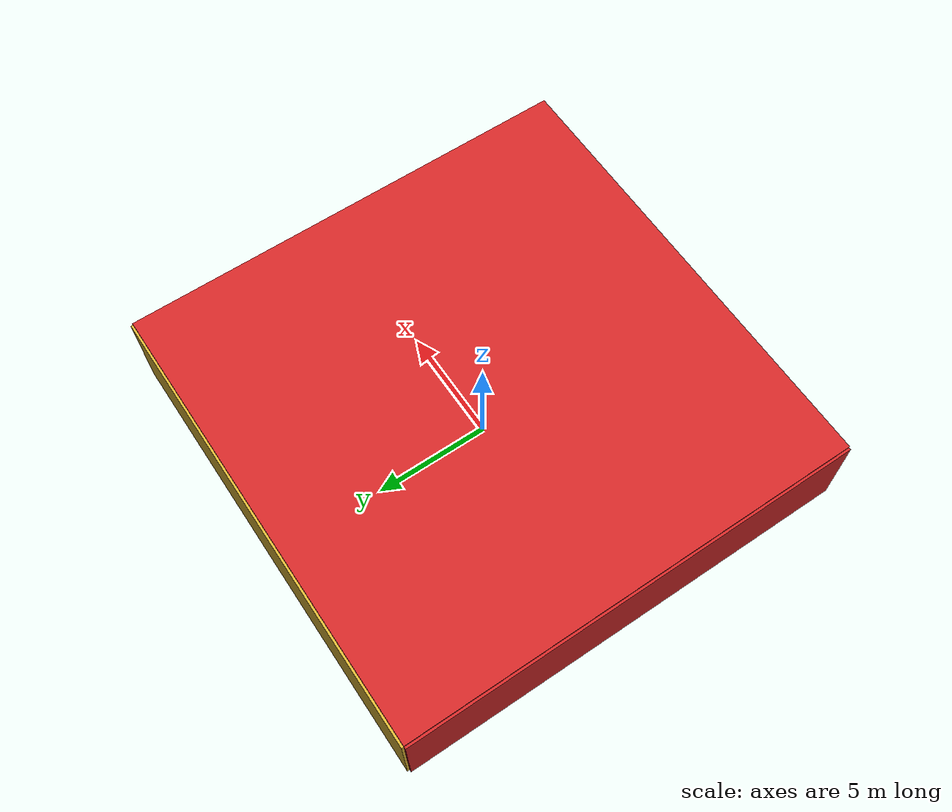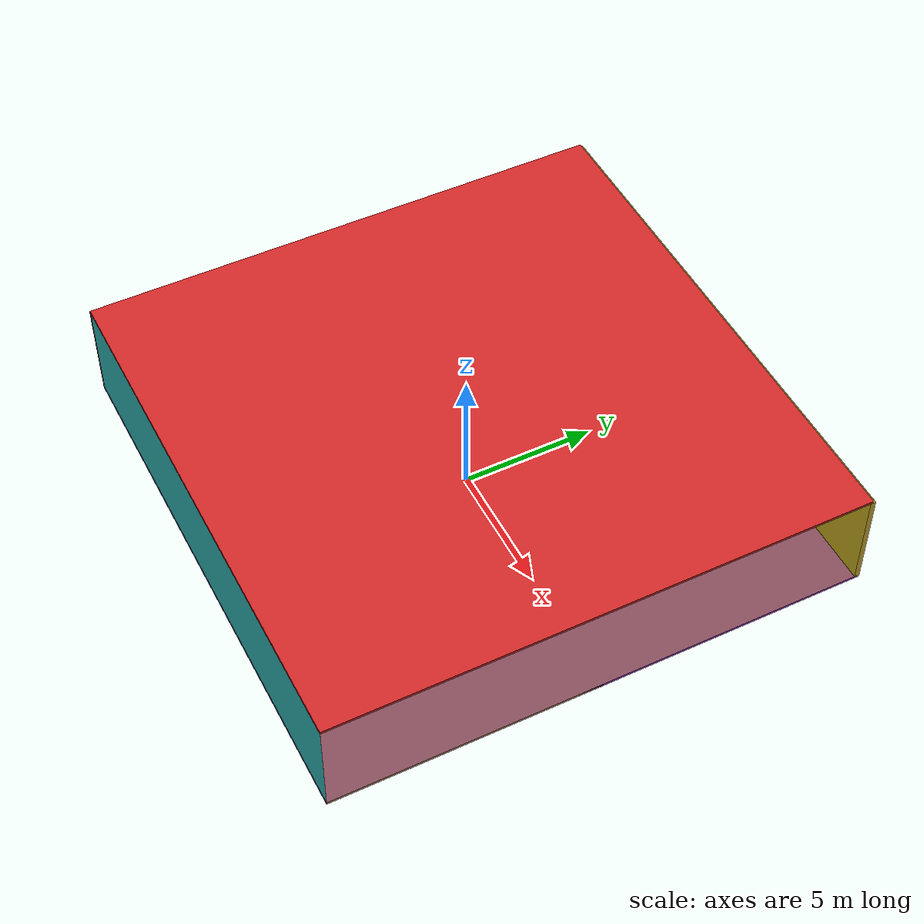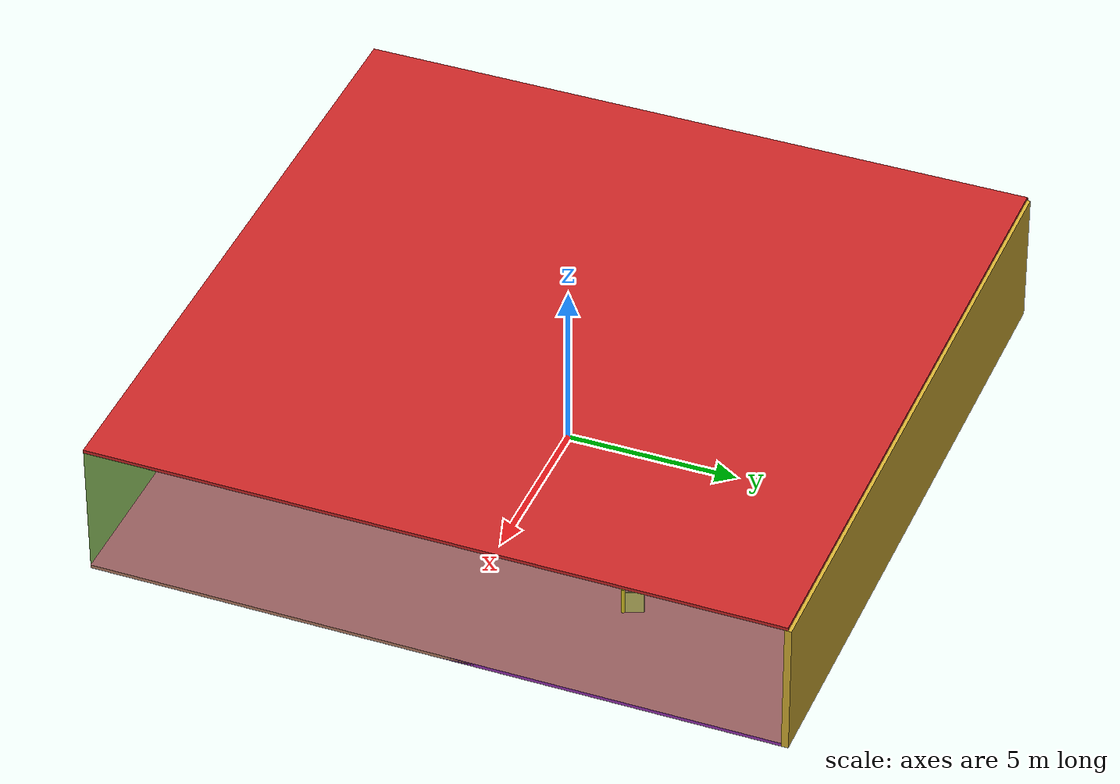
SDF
<sdf version="1.4">
 <world name="default">
  <physics type="ode">
   <max_step_size>0.001</max_step_size>
   <real_time_factor>1</real_time_factor>
   <real_time_update_rate>1000</real_time_update_rate>
   <gravity>0 0 -9.8</gravity>
  </physics>
  <scene><ambient>0.4 0.4 0.4 1</ambient><background>0.7 0.7 0.7 1</background><shadows>1</shadows></scene>
  <model name="Surrounding">
   <static>1</static>
   <link name="Ceiling">
    <collision name="Ceiling_Collision"><geometry><box><size>20 20 0.1</size></box></geometry></collision>
    <visual name="Ceiling_Visual">
     <geometry><box><size>20 20 0.1</size></box></geometry>
     <material>
      <script><uri>file://media/materials/scripts/gazebo.material</uri><name>Gazebo/RedBright</name></script>
     </material>
    </visual>
    <pose>0 0 4.05 0 0 0</pose>
   </link>
   <link name="Wall_South">
    <collision name="Wall_South_Collision">
     <geometry><box><size>20 0 4</size></box></geometry>
     <pose>0 0 2 0 -0 0</pose>
    </collision>
    <visual name="Wall_South_Visual">
     <pose>0 0 2 0 -0 0</pose>
     <geometry><box><size>20 0 4</size></box></geometry>
     <material>
      <script><uri>file://media/materials/scripts/gazebo.material</uri><name>Gazebo/Turquoise</name></script>
     </material>
    </visual>
    <velocity_decay><linear>0</linear><angular>0</angular></velocity_decay>
    <pose>0 -10 0 0 -0 0</pose>
   </link>
   <link name="Wall_East">
    <collision name="Wall_21_Collision">
     <geometry><box><size>20 0 4</size></box></geometry>
     <pose>0 0 2 0 -0 0</pose>
    </collision>
    <visual name="Wall_21_Visual">
     <pose>0 0 2 0 -0 0</pose>
     <geometry><box><size>20 0 4</size></box></geometry>
     <material>
      <script>
       <uri>file://media/materials/scripts/gazebo.material</uri>
       <name>Gazebo/YellowTransparent</name>
      </script>
     </material>
    </visual>
    <velocity_decay><linear>0</linear><angular>0</angular></velocity_decay>
    <pose>10 0 0 0 -0 1.5708</pose>
   </link>
   <link name="Wall_North">
    <collision name="Wall_22_Collision">
     <geometry><box><size>20 0.2 4</size></box></geometry>
     <pose>0 0 2 0 -0 0</pose>
    </collision>
    <visual name="Wall_22_Visual">
     <pose>0 0 2 0 -0 0</pose>
     <geometry><box><size>20 0.2 4</size></box></geometry>
     <material>
      <script><uri>file://media/materials/scripts/gazebo.material</uri><name>Gazebo/Gold</name></script>
     </material>
    </visual>
    <velocity_decay><linear>0</linear><angular>0</angular></velocity_decay>
    <pose>0 10 0 0 -0 0</pose>
   </link>
   <link name="Wall_West">
    <collision name="Wall_23_Collision">
     <geometry><box><size>20 0.2 4</size></box></geometry>
     <pose>0 0 2 0 -0 0</pose>
    </collision>
    <visual name="Wall_23_Visual">
     <pose>0 0 2 0 -0 0</pose>
     <geometry><box><size>20 0.2 4</size></box></geometry>
     <material>
      <script><uri>file://media/materials/scripts/gazebo.material</uri><name>Gazebo/Red</name></script>
     </material>
    </visual>
    <velocity_decay><linear>0</linear><angular>0</angular></velocity_decay>
    <pose>-10 0 0 0 0 -1.5708</pose>
   </link>
   <link name="Ground_link">
    <collision name="collision">
     <pose>0 0 .05 0 -0 0</pose>
     <geometry><box><size>20 20 0.1</size></box></geometry>
    </collision>
    <visual name="visual">
     <pose>0 0 .05 0 -0 0</pose>
     <geometry><box><size>20 20 0.1</size></box></geometry>
     <material>
      <script><uri>file://media/materials/scripts/gazebo.material</uri><name>Gazebo/PurpleGlow</name></script>
     </material>
    </visual>
   </link>
   <static>1</static>
  </model>
  <spherical_coordinates>
   <surface_model>EARTH_WGS84</surface_model>
   <latitude_deg>0</latitude_deg>
   <longitude_deg>0</longitude_deg>
   <elevation>0</elevation>
   <heading_deg>0</heading_deg>
  </spherical_coordinates>
  <light name="lightball_0" type="diffuse">
   <diffuse>0.8 0.8 0.8 1</diffuse>
   <specular>0.2 0.2 0.2 1</specular>
   <attenuation>
    <range>100</range>
    <constant>0.7</constant>
    <linear>0.01</linear>
    <quadratic>0.001</quadratic>
   </attenuation>
   <direction>-0.5 0.1 -0.9</direction>
   <pose>3.81949246673 9.81311835766 1.01938824697 0 0 0</pose>
  </light>
  <light name="lightball_1" type="diffuse">
   <diffuse>0.8 0.8 0.8 1</diffuse>
   <specular>0.2 0.2 0.2 1</specular>
   <attenuation>
    <range>100</range>
    <constant>0.7</constant>
    <linear>0.01</linear>
    <quadratic>0.001</quadratic>
   </attenuation>
   <direction>-0.5 0.1 -0.9</direction>
   <pose>8.07614804524 -2.65166542112 1.6567544412 0 0 0</pose>
  </light>
  <light name="lightball_2" type="diffuse">
   <diffuse>0.8 0.8 0.8 1</diffuse>
   <specular>0.2 0.2 0.2 1</specular>
   <attenuation>
    <range>100</range>
    <constant>0.7</constant>
    <linear>0.01</linear>
    <quadratic>0.001</quadratic>
   </attenuation>
   <direction>-0.5 0.1 -0.9</direction>
   <pose>0.669500678281 8.8390519336 0.585832116918 0 0 0</pose>
  </light>
  <light name="lightball_3" type="diffuse">
   <diffuse>0.8 0.8 0.8 1</diffuse>
   <specular>0.2 0.2 0.2 1</specular>
   <attenuation>
    <range>100</range>
    <constant>0.7</constant>
    <linear>0.01</linear>
    <quadratic>0.001</quadratic>
   </attenuation>
   <direction>-0.5 0.1 -0.9</direction>
   <pose>8.34554585949 5.78221611966 1.8145278934 0 0 0</pose>
  </light>
  <include>
   <uri>model://textured_shapes</uri>
   <pose>-4.44410032066 6.55970228266 0 0 0 0.467825908547</pose>
  </include>
  <include>
   <uri>model://robocup_3Dsim_goal</uri>
   <pose>5.57621106379 3.79887261015 0 0 0 1.91915266325</pose>
  </include>
 </world>
</sdf>

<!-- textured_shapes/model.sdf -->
<sdf version="1.6">
  <model name="textured_shapes">
    <pose>0 0 0.5 0 0 0</pose>
    <link name="box">
      <pose>0 -1.5 0 0 0 0</pose>
      <collision name="collision">
        <geometry>
          <box>
            <size>1 1 1</size>
          </box>
        </geometry>
      </collision>
      <visual name="visual">
        <geometry>
          <box>
            <size>1 1 1</size>
          </box>
        </geometry>
        <material>
          <script>
            <uri>model://../model_source/models/textured_shapes/materials/scripts</uri>
            <uri>model://../model_source/models/textured_shapes/materials/textures</uri>
            <name>TexturedShape/Squares</name>
          </script>
        </material>
      </visual>
    </link>
    <link name="sphere">
      <collision name="collision">
        <geometry>
          <sphere>
            <radius>0.5</radius>
          </sphere>
        </geometry>
      </collision>
      <visual name="visual">
        <geometry>
          <sphere>
            <radius>0.5</radius>
          </sphere>
        </geometry>
        <material>
          <script>
            <uri>model://../model_source/models/textured_shapes/materials/scripts</uri>
            <uri>model://../model_source/models/textured_shapes/materials/textures</uri>
            <name>TexturedShape/Squares</name>
          </script>
        </material>
      </visual>
    </link>
    <link name="cylinder">
      <pose>0 1.5 0 0 0 0</pose>
      <collision name="collision">
        <geometry>
          <cylinder>
            <radius>0.5</radius>
            <length>1</length>
          </cylinder>
        </geometry>
      </collision>
      <visual name="visual">
        <geometry>
          <cylinder>
            <radius>0.5</radius>
            <length>1</length>
          </cylinder>
        </geometry>
        <material>
          <script>
            <uri>model://../model_source/models/textured_shapes/materials/scripts</uri>
            <uri>model://../model_source/models/textured_shapes/materials/textures</uri>
            <name>TexturedShape/Squares</name>
          </script>
        </material>
      </visual>
    </link>
  </model>
</sdf>

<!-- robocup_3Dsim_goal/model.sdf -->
<sdf version="1.5">
  <model name="robocup_3d_goal">
    <static>true</static>
    <link name="left_post">
      <pose>0 1.05 0.45 0 0 0</pose>
      <collision name="collision">
        <geometry>
          <cylinder>
            <radius>0.05</radius>
            <length>0.9</length>
          </cylinder>
        </geometry>
      </collision>
      <visual name="visual">
        <geometry>
          <cylinder>
            <radius>0.05</radius>
            <length>0.9</length>
          </cylinder>
        </geometry>
        <material>
          <script>
            <uri>file://media/materials/scripts/gazebo.material</uri>
            <name>Gazebo/ZincYellow</name>
          </script>
        </material>
      </visual>
    </link>
    <link name="left_support_horiz_lower">
      <pose>0.30 1.05 0.01 0 0 0</pose>
      <collision name="collision">
        <geometry>
          <box>
            <size>0.50 0.02 0.02</size>
          </box>
        </geometry>
      </collision>
      <visual name="visual">
        <geometry>
          <box>
            <size>0.50 0.02 0.02</size>
          </box>
        </geometry>
        <material>
          <script>
            <uri>file://media/materials/scripts/gazebo.material</uri>
            <name>Gazebo/White</name>
          </script>
        </material>
      </visual>
    </link>
    <link name="left_support_horiz_upper">
      <pose>0.30 1.05 0.79 0 0 0</pose>
      <collision name="collision">
        <geometry>
          <box>
            <size>0.50 0.02 0.02</size>
          </box>
        </geometry>
      </collision>
      <visual name="visual">
        <geometry>
          <box>
            <size>0.50 0.02 0.02</size>
          </box>
        </geometry>
        <material>
          <script>
            <uri>file://media/materials/scripts/gazebo.material</uri>
            <name>Gazebo/White</name>
          </script>
        </material>
      </visual>
    </link>
    <link name="left_support_vertical">
      <pose>0.56 1.05 0.4 0 1.5708 0</pose>
      <collision name="collision">
        <geometry>
          <box>
            <size>0.80 0.02 0.02</size>
          </box>
        </geometry>
      </collision>
      <visual name="visual">
        <geometry>
          <box>
            <size>0.80 0.02 0.02</size>
          </box>
        </geometry>
        <material>
          <script>
            <uri>file://media/materials/scripts/gazebo.material</uri>
            <name>Gazebo/White</name>
          </script>
        </material>
      </visual>
    </link>
    <link name="right_support_horiz_lower">
      <pose>0.30 -1.05 0.01 0 0 0</pose>
      <collision name="collision">
        <geometry>
          <box>
            <size>0.50 0.02 0.02</size>
          </box>
        </geometry>
      </collision>
      <visual name="visual">
        <geometry>
          <box>
            <size>0.50 0.02 0.02</size>
          </box>
        </geometry>
        <material>
          <script>
            <uri>file://media/materials/scripts/gazebo.material</uri>
            <name>Gazebo/White</name>
          </script>
        </material>
      </visual>
    </link>
    <link name="right_support_horiz_upper">
      <pose>0.30 -1.05 0.79 0 0 0</pose>
      <collision name="collision">
        <geometry>
          <box>
            <size>0.50 0.02 0.02</size>
          </box>
        </geometry>
      </collision>
      <visual name="visual">
        <geometry>
          <box>
            <size>0.50 0.02 0.02</size>
          </box>
        </geometry>
        <material>
          <script>
            <uri>file://media/materials/scripts/gazebo.material</uri>
            <name>Gazebo/White</name>
          </script>
        </material>
      </visual>
    </link>
    <link name="right_support_vertical">
      <pose>0.56 -1.05 0.4 0 1.5708 0</pose>
      <collision name="collision">
        <geometry>
          <box>
            <size>0.80 0.02 0.02</size>
          </box>
        </geometry>
      </collision>
      <visual name="visual">
        <geometry>
          <box>
            <size>0.80 0.02 0.02</size>
          </box>
        </geometry>
        <material>
          <script>
            <uri>file://media/materials/scripts/gazebo.material</uri>
            <name>Gazebo/White</name>
          </script>
        </material>
      </visual>
    </link>
    <link name="center_support_horiz_lower">
      <pose>0.56 0 0.01 0 1.5708 0</pose>
      <collision name="collision">
        <geometry>
          <box>
            <size>0.02 2.08 0.02</size>
          </box>
        </geometry>
      </collision>
      <visual name="visual">
        <geometry>
          <box>
            <size>0.02 2.08 0.02</size>
          </box>
        </geometry>
        <material>
          <script>
            <uri>file://media/materials/scripts/gazebo.material</uri>
            <name>Gazebo/White</name>
          </script>
        </material>
      </visual>
    </link>
    <link name="center_support_horiz_upper">
      <pose>0.56 0 0.79 0 1.5708 0</pose>
      <collision name="collision">
        <geometry>
          <box>
            <size>0.02 2.08 0.02</size>
          </box>
        </geometry>
      </collision>
      <visual name="visual">
        <geometry>
          <box>
            <size>0.02 2.08 0.02</size>
          </box>
        </geometry>
        <material>
          <script>
            <uri>file://media/materials/scripts/gazebo.material</uri>
            <name>Gazebo/White</name>
          </script>
        </material>
      </visual>
    </link>
    <link name="right_post">
      <pose>0 -1.05 0.45 0 0 0</pose>
      <collision name="collision">
        <geometry>
          <cylinder>
            <radius>0.05</radius>
            <length>0.9</length>
          </cylinder>
        </geometry>
      </collision>
      <visual name="visual">
        <geometry>
          <cylinder>
            <radius>0.05</radius>
            <length>0.9</length>
          </cylinder>
        </geometry>
        <material>
          <script>
            <uri>file://media/materials/scripts/gazebo.material</uri>
            <name>Gazebo/ZincYellow</name>
          </script>
        </material>
      </visual>
    </link>
    <link name="crossbar">
      <pose>0 0 0.85 1.57 1.57 0</pose>
      <collision name="collision">
        <geometry>
          <cylinder>
            <radius>0.05</radius>
            <length>2.0</length>
          </cylinder>
        </geometry>
      </collision>
      <visual name="visual">
        <geometry>
          <cylinder>
            <radius>0.05</radius>
            <length>2.0</length>
          </cylinder>
        </geometry>
        <material>
          <script>
            <uri>file://media/materials/scripts/gazebo.material</uri>
            <name>Gazebo/ZincYellow</name>
          </script>
        </material>
      </visual>
    </link>
    <link name="center_net">
      <pose>0.56 0 0.40 0 0 0</pose>
      <collision name="collision">
        <geometry>
          <box>
            <size>0.01 2.1 0.80</size>
          </box>
        </geometry>
      </collision>
      <visual name="visual">
        <geometry>
          <box>
            <size>0.01 2.1 0.80</size>
          </box>
        </geometry>
        <material>
          <script>
            <uri>model://../model_source/models/robocup09_spl_field/materials/scripts/</uri>
            <uri>model://../model_source/models/robocup09_spl_field/materials/textures/</uri>
            <name>RoboCup/Net</name>
          </script>
        </material>
      </visual>
    </link>
    <link name="left_net">
      <pose>0.30 1.05 0.40 0 0 0</pose>
      <collision name="collision">
        <geometry>
          <box>
            <size>0.50 0.01 0.76</size>
          </box>
        </geometry>
      </collision>
      <visual name="visual">
        <geometry>
          <box>
            <size>0.50 0.01 0.76</size>
          </box>
        </geometry>
        <material>
          <script>
            <uri>model://../model_source/models/robocup09_spl_field/materials/scripts/</uri>
            <uri>model://../model_source/models/robocup09_spl_field/materials/textures/</uri>
            <name>RoboCup/Net</name>
          </script>
        </material>
      </visual>
    </link>
    <link name="right_net">
      <pose>0.30 -1.05 0.40 0 0 0</pose>
      <collision name="collision">
        <geometry>
          <box>
            <size>0.50 0.01 0.76</size>
          </box>
        </geometry>
      </collision>
      <visual name="visual">
        <geometry>
          <box>
            <size>0.50 0.01 0.76</size>
          </box>
        </geometry>
        <material>
          <script>
            <uri>model://../model_source/models/robocup09_spl_field/materials/scripts/</uri>
            <uri>model://../model_source/models/robocup09_spl_field/materials/textures/</uri>
            <name>RoboCup/Net</name>
          </script>
        </material>
      </visual>
    </link>
  </model>
</sdf>
